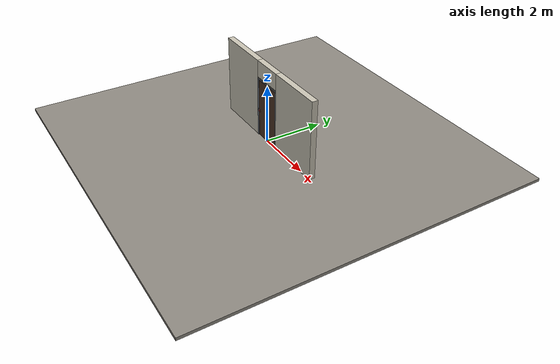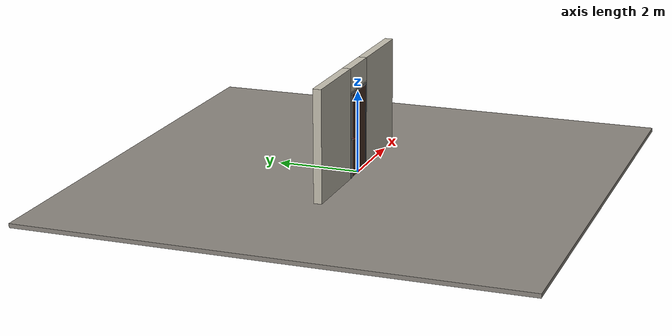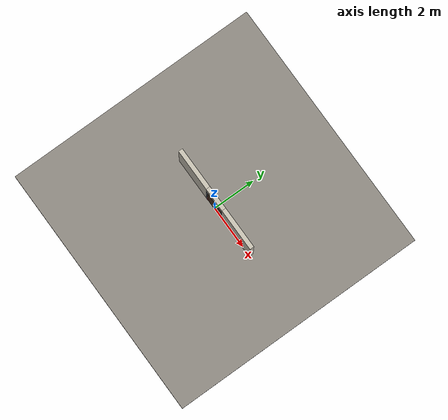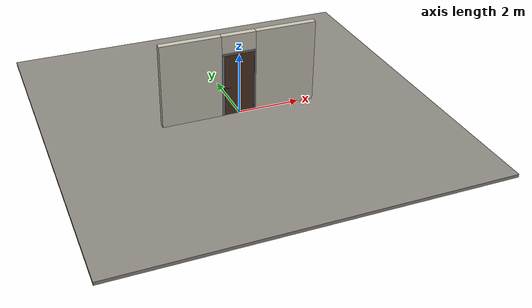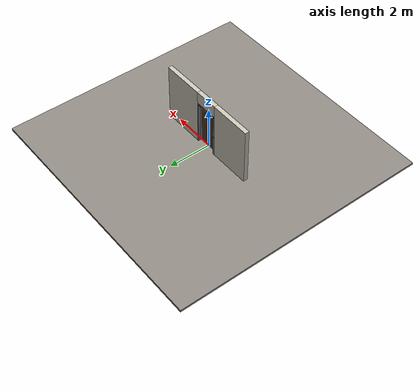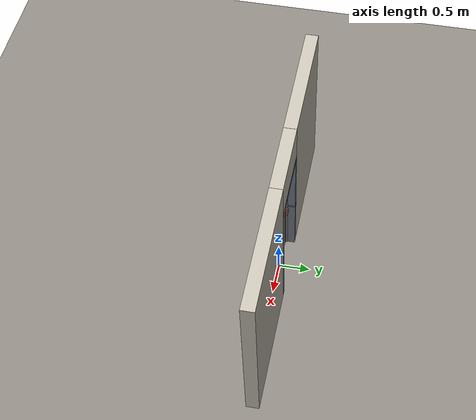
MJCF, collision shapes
<?xml version="1.0" ?>
<mujoco model="db0160_swing_single_minimal">
  <compiler angle="radian" meshdir="../../hardware" texturedir="../../textures" autolimits="true" inertiafromgeom="false"/>
  <option timestep="0.002" integrator="implicitfast" cone="elliptic" impratio="10" noslip_iterations="3">
    <flag multiccd="enable"/>
  </option>
  <size memory="16M"/>
  <default>
    <geom condim="4" solref="0.005 1" solimp="0.95 0.99 0.001"/>
    <joint solreflimit="0.005 1" solimplimit="0.95 0.99 0.001"/>
    <tendon solreflimit="0.005 1"/>
    <equality solref="0.002 1"/>
  </default>
  <visual>
    <headlight ambient="0.4 0.4 0.4" diffuse="0.7 0.7 0.7" specular="0.2 0.2 0.2"/>
    <quality shadowsize="4096"/>
    <map znear="0.01" zfar="60"/>
  </visual>
  <asset>
    <mesh name="lever_6fbb1e9593" file="lever_6fbb1e9593.obj"/>
    <material name="mat_floor" rgba="0.55 0.53 0.5 1" specular="0.2" shininess="0.15" reflectance="0"/>
    <material name="mat_wall" rgba="0.78 0.76 0.7 1" specular="0.2" shininess="0.1" reflectance="0"/>
    <material name="mat_leaf" rgba="0.3 0.2 0.14 1" specular="0.2" shininess="0.46" reflectance="0"/>
    <material name="mat_leaf_panel" rgba="0.276 0.184 0.129 1" specular="0.2" shininess="0.46" reflectance="0"/>
    <material name="mat_hinge" rgba="0.65 0.66 0.68 1" specular="0.74" shininess="0.5" reflectance="0.36"/>
    <material name="mat_op_brass" rgba="0.85 0.66 0.3 1" specular="0.8" shininess="0.75" reflectance="0.4"/>
    <material name="mat_trim" rgba="0.85 0.66 0.3 1" specular="0.8" shininess="0.75" reflectance="0.4"/>
    <material name="mat_bolt" rgba="0.75 0.76 0.77 1" specular="0.8" shininess="0.65" reflectance="0.4"/>
    <material name="mat_frame" rgba="0.45 0.48 0.52 1" specular="0.32" shininess="0.6" reflectance="0.08"/>
    <material name="mat_closer" rgba="0.22 0.17 0.13 1" specular="0.8" shininess="0.6" reflectance="0.4"/>
    <material name="mat_wallreader" rgba="0.05 0.05 0.05 1" specular="0.38" shininess="0.3" reflectance="0.12"/>
    <material name="mat_rex" rgba="0.1 0.6 0.2 1" specular="0.2" shininess="0.6" reflectance="0"/>
    <material name="mat_bumper_stop" rgba="0.08 0.08 0.08 1" specular="0.2" shininess="0.1" reflectance="0"/>
    <material name="mat_stop_base" rgba="0.9 0.9 0.92 1" specular="0.8" shininess="0.9" reflectance="0.4"/>
    <texture name="skybox" type="skybox" builtin="gradient" rgb1="0.6 0.7 0.85" rgb2="0.9 0.92 0.95" width="256" height="256"/>
  </asset>
  <worldbody>
    <light name="sun" pos="1.5 -2.5 4" dir="-0.3 0.5 -0.8" directional="true" diffuse="0.8 0.8 0.8" specular="0.3 0.3 0.3" castshadow="true"/>
    <light name="fill" pos="-1.5 2.5 3" dir="0.3 -0.5 -0.7" directional="true" diffuse="0.35 0.35 0.4" castshadow="false"/>
    <camera name="robot_view" pos="0 -2.471187 1.734312" xyaxes="1 0 0 0 0.26963 0.962964" fovy="52"/>
    <camera name="far_view" pos="0 2.613187 1.734312" xyaxes="-1 0 0 0 -0.26963 0.962964" fovy="52"/>
    <camera name="iso" pos="-1.932062 -2.064437 2.141063" xyaxes="0.741536 -0.670913 0 0.242917 0.268487 0.932151" fovy="46"/>
    <camera name="detail_handle" pos="-0.143 -0.877 1.245" xyaxes="0.97561 0.219512 0 -0.070934 0.315262 0.94635" fovy="38"/>
    <geom name="floor" type="box" size="6 6 0.05" pos="0 0 -0.05" material="mat_floor" group="0" contype="1" conaffinity="1" friction="0.8 0.005 0.0001" density="2400"/>
    <geom name="wall_left" type="box" size="0.967 0.1 1.35" pos="-1.533 0.071 1.35" material="mat_wall" group="0" contype="1" conaffinity="1" friction="0.6 0.005 0.0001" density="800"/>
    <geom name="wall_right" type="box" size="0.982 0.1 1.35" pos="1.518 0.071 1.35" material="mat_wall" group="0" contype="1" conaffinity="1" friction="0.6 0.005 0.0001" density="800"/>
    <geom name="wall_header" type="box" size="0.551 0.1 0.2875" pos="-0.015 0.071 2.4125" material="mat_wall" group="0" contype="1" conaffinity="1" friction="0.6 0.005 0.0001" density="800"/>
    <geom name="jamb_hinge" type="box" size="0.025 0.1 1.0225" pos="0.511 0.071 1.0225" material="mat_frame" group="0" contype="1" conaffinity="1" friction="0.6 0.005 0.0001" density="300"/>
    <geom name="strike_965_wall_n" type="box" size="0.04 0.08225 0.015" pos="-0.526 0.08875 0.965" material="mat_frame" group="0" contype="1" conaffinity="1" friction="0.6 0.005 0.0001" density="300"/>
    <geom name="strike_965_wall_p" type="box" size="0.04 0.008 0.015" pos="-0.526 -0.0145 0.965" material="mat_frame" group="0" contype="1" conaffinity="1" friction="0.6 0.005 0.0001" density="300"/>
    <geom name="strike_965_ramp" type="box" size="0.04 0.016771 0.015" pos="-0.529277 -0.019611 0.965" quat="0.973249 0 0 -0.229753" material="mat_frame" group="0" contype="1" conaffinity="1" friction="0.12 0.005 0.0001" density="300"/>
    <geom name="strike_965_back" type="box" size="0.031 0.0065 0.015" pos="-0.535 0 0.965" material="mat_frame" group="0" contype="1" conaffinity="1" friction="0.6 0.005 0.0001" density="300"/>
    <geom name="jamb_strike_0" type="box" size="0.04 0.1 0.475" pos="-0.526 0.071 0.475" material="mat_frame" group="0" contype="1" conaffinity="1" friction="0.6 0.005 0.0001" density="300"/>
    <geom name="jamb_strike_1" type="box" size="0.04 0.1 0.5325" pos="-0.526 0.071 1.5125" material="mat_frame" group="0" contype="1" conaffinity="1" friction="0.6 0.005 0.0001" density="300"/>
    <geom name="jamb_head" type="box" size="0.551 0.1 0.025" pos="-0.015 0.071 2.07" material="mat_frame" group="0" contype="1" conaffinity="1" friction="0.6 0.005 0.0001" density="300"/>
    <geom name="head_stud" type="box" size="0.551 0.1 0.015" pos="-0.015 0.071 2.11" material="mat_wall" group="0" contype="1" conaffinity="1" friction="0.6 0.005 0.0001" density="500"/>
    <geom name="stop_hinge" type="box" size="0.0055 0.016 1.0225" pos="0.4805 0.0385 1.0225" material="mat_frame" group="0" contype="1" conaffinity="1" friction="0.6 0.005 0.0001" density="300"/>
    <geom name="stop_strike" type="box" size="0.0055 0.016 1.0225" pos="-0.4805 0.0385 1.0225" material="mat_frame" group="0" contype="1" conaffinity="1" friction="0.6 0.005 0.0001" density="300"/>
    <geom name="stop_head" type="box" size="0.486 0.016 0.0055" pos="0 0.0385 2.0395" material="mat_frame" group="0" contype="1" conaffinity="1" friction="0.6 0.005 0.0001" density="300"/>
    <site name="approach_point" pos="0 -1.5 0" quat="1 0 0 0" size="0.05" rgba="0.2 0.9 0.2 0.5" group="4"/>
    <site name="goal_point" pos="0 1.5 0" quat="1 0 0 0" size="0.05" rgba="0.2 0.9 0.2 0.5" group="4"/>
    <site name="door_plane_center" pos="0 0 1.0225" quat="1 0 0 0" size="0.02" rgba="0.2 0.9 0.2 0.5" group="4"/>
    <body name="leaf" pos="0.486 0 0">
      <inertial pos="-0.4855 0 1.025" mass="63.512259" quat="-0.5 0.5 0.5 0.5" diaginertia="4.938930226 21.863883302 26.78232024"/>
      <joint name="leaf_hinge" type="hinge" axis="0 0 1" pos="-0.003 -0.029 0" limited="true" range="0 1.570796" damping="12.318237" frictionloss="0.276848" stiffness="15.508058" springref="-1.827437" armature="0.02"/>
      <geom name="leaf_slab" type="box" size="0.4825 0.022 1.016" pos="-0.4855 0 1.025" material="mat_leaf" group="0" contype="1" conaffinity="1" friction="0.4 0.005 0.0001" density="1"/>
      <site name="leaf_edge_mid" pos="-0.968 0 1.016" quat="1 0 0 0" size="0.02" rgba="0.2 0.9 0.2 0.5" group="4"/>
      <body name="leaf_handle" pos="-0.913 0 0.965">
        <inertial pos="0.043135 0 0" mass="0.776327" quat="0.707107 0 0 -0.707107" diaginertia="0.001583515 0.003788801 0.005327262"/>
        <joint name="leaf_handle_hinge" type="hinge" axis="0 1 0" limited="true" range="0 0.7" damping="0.270116" frictionloss="0.064" stiffness="1.4" springref="-0.428571" armature="0.01"/>
        <geom name="leaf_handle_lever_n" type="mesh" mesh="lever_6fbb1e9593" pos="0 -0.022 0" quat="0 0 -0.707107 0.707107" material="mat_op_brass" group="1" contype="0" conaffinity="0" density="3000"/>
        <geom name="leaf_handle_lever_col_n" type="capsule" size="0.01 0.055" pos="0.065 -0.077 0" quat="0.707107 0 0.707107 0" material="mat_op_brass" group="3" contype="1" conaffinity="1" rgba="0.8 0.3 0.3 0.25" friction="0.7 0.01 0.0001" density="3000"/>
        <geom name="leaf_handle_hub_col_n" type="cylinder" size="0.012 0.022" pos="0 -0.052 0" quat="0.707107 -0.707107 0 0" material="mat_op_brass" group="3" contype="1" conaffinity="1" rgba="0.8 0.3 0.3 0.25" friction="0.6 0.005 0.0001" density="3000"/>
        <geom name="leaf_handle_lever_p" type="mesh" mesh="lever_6fbb1e9593" pos="0 0.022 0" quat="0 0 0.707107 0.707107" material="mat_op_brass" group="1" contype="0" conaffinity="0" density="3000"/>
        <geom name="leaf_handle_lever_col_p" type="capsule" size="0.01 0.055" pos="0.065 0.077 0" quat="0.707107 0 0.707107 0" material="mat_op_brass" group="3" contype="1" conaffinity="1" rgba="0.8 0.3 0.3 0.25" friction="0.7 0.01 0.0001" density="3000"/>
        <geom name="leaf_handle_hub_col_p" type="cylinder" size="0.012 0.022" pos="0 0.052 0" quat="0.707107 -0.707107 0 0" material="mat_op_brass" group="3" contype="1" conaffinity="1" rgba="0.8 0.3 0.3 0.25" friction="0.6 0.005 0.0001" density="3000"/>
        <site name="leaf_handle_grip_n" pos="0.104 -0.077 0" quat="1 0 0 0" size="0.012" rgba="0.2 0.9 0.2 0.5" group="4"/>
        <site name="leaf_handle_grip_p" pos="0.104 0.077 0" quat="1 0 0 0" size="0.012" rgba="0.2 0.9 0.2 0.5" group="4"/>
      </body>
      <body name="leaf_latch_bolt" pos="-0.968 0 0.965">
        <inertial pos="0.008 0 0" mass="0.027149" quat="0 0 -0.707107 0.707107" diaginertia="0.000000328 0.000003943 0.000003943"/>
        <joint name="leaf_latch_bolt_slide" type="slide" axis="1 0 0" limited="true" range="0 0.014" damping="2" frictionloss="0.3" stiffness="400" springref="-0.01" armature="0.1"/>
        <geom name="leaf_latch_bolt_capsule" type="capsule" size="0.005 0.017" pos="0.008 0 0" quat="0.707107 0 -0.707107 0" material="mat_bolt" group="0" contype="1" conaffinity="1" friction="0.2 0.005 0.0001" density="8500"/>
      </body>
    </body>
  </worldbody>
  <tendon>
    <fixed name="leaf_latch_bolt_coupling" limited="true" range="0 10">
      <joint joint="leaf_latch_bolt_slide" coef="1"/>
      <joint joint="leaf_handle_hinge" coef="-0.021212"/>
    </fixed>
  </tendon>
  <sensor>
    <jointpos name="leaf_hinge_pos" joint="leaf_hinge"/>
    <jointvel name="leaf_hinge_vel" joint="leaf_hinge"/>
    <jointpos name="leaf_handle_hinge_pos" joint="leaf_handle_hinge"/>
    <jointvel name="leaf_handle_hinge_vel" joint="leaf_handle_hinge"/>
    <jointpos name="leaf_latch_bolt_slide_pos" joint="leaf_latch_bolt_slide"/>
    <jointvel name="leaf_latch_bolt_slide_vel" joint="leaf_latch_bolt_slide"/>
  </sensor>
</mujoco>
